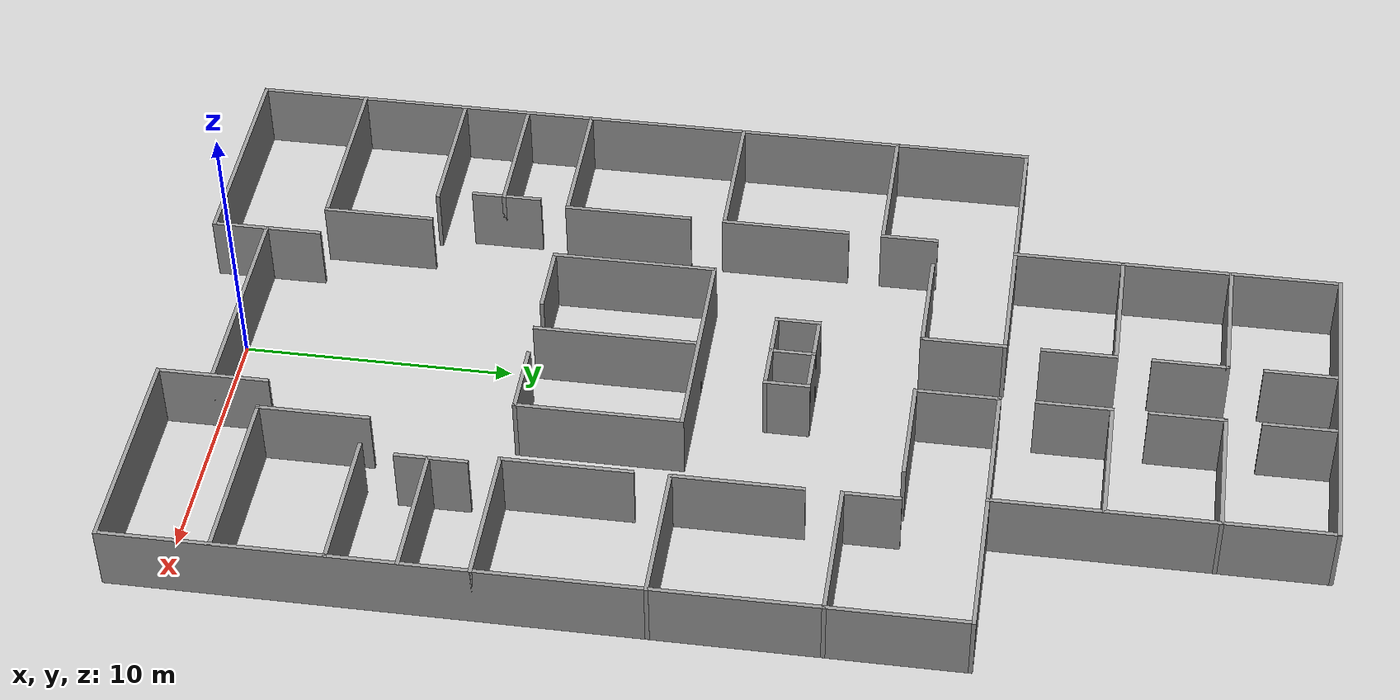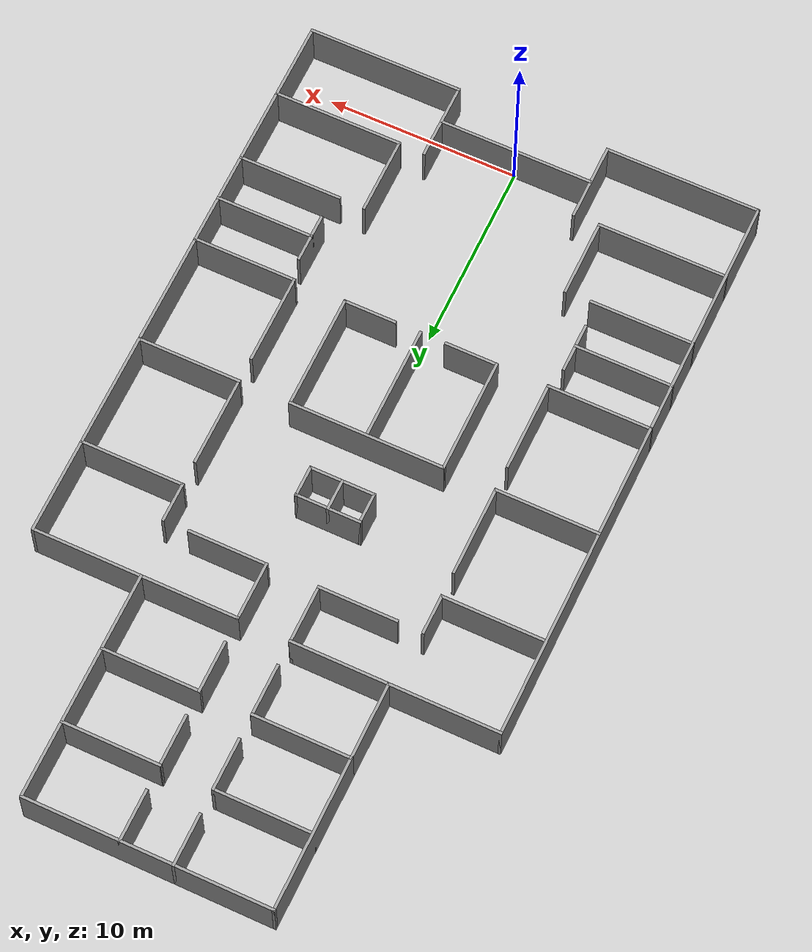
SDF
<?xml version='1.0'?>
<sdf version='1.6'>
  <model name='hospital_02'>
    <pose frame=''>0 19 0 0 -0 0</pose>
    <link name='Wall_107'>
      <collision name='Wall_107_Collision'>
        <geometry>
          <box>
            <size>6.15 0.15 2.5</size>
          </box>
        </geometry>
        <pose frame=''>0 0 1.25 0 -0 0</pose>
      </collision>
      <visual name='Wall_107_Visual'>
        <pose frame=''>0 0 1.25 0 -0 0</pose>
        <geometry>
          <box>
            <size>6.15 0.15 2.5</size>
          </box>
        </geometry>
        <material>
          <script>
            <uri>file://media/materials/scripts/gazebo.material</uri>
            <name>Gazebo/Grey</name>
          </script>
          <ambient>1 1 1 1</ambient>
        </material>
        <meta>
          <layer>0</layer>
        </meta>
      </visual>
      <pose frame=''>-4 -5 0 0 -0 -1.5708</pose>
    </link>
    <link name='Wall_109'>
      <collision name='Wall_109_Collision'>
        <geometry>
          <box>
            <size>2.8 0.15 2.5</size>
          </box>
        </geometry>
        <pose frame=''>0 0 1.25 0 -0 0</pose>
      </collision>
      <visual name='Wall_109_Visual'>
        <pose frame=''>0 0 1.25 0 -0 0</pose>
        <geometry>
          <box>
            <size>2.8 0.15 2.5</size>
          </box>
        </geometry>
        <material>
          <script>
            <uri>file://media/materials/scripts/gazebo.material</uri>
            <name>Gazebo/Grey</name>
          </script>
          <ambient>1 1 1 1</ambient>
        </material>
        <meta>
          <layer>0</layer>
        </meta>
      </visual>
      <pose frame=''>-2.675 -8 0 0 -0 0</pose>
    </link>
    <link name='Wall_111'>
      <collision name='Wall_111_Collision'>
        <geometry>
          <box>
            <size>6.15 0.15 2.5</size>
          </box>
        </geometry>
        <pose frame=''>0 0 1.25 0 -0 0</pose>
      </collision>
      <visual name='Wall_111_Visual'>
        <pose frame=''>0 0 1.25 0 -0 0</pose>
        <geometry>
          <box>
            <size>6.15 0.15 2.5</size>
          </box>
        </geometry>
        <material>
          <script>
            <uri>file://media/materials/scripts/gazebo.material</uri>
            <name>Gazebo/Grey</name>
          </script>
          <ambient>1 1 1 1</ambient>
        </material>
        <meta>
          <layer>0</layer>
        </meta>
      </visual>
      <pose frame=''>4 -5 0 0 -0 -1.5708</pose>
    </link>
    <link name='Wall_113'>
      <collision name='Wall_113_Collision'>
        <geometry>
          <box>
            <size>2.8 0.15 2.5</size>
          </box>
        </geometry>
        <pose frame=''>0 0 1.25 0 -0 0</pose>
      </collision>
      <visual name='Wall_113_Visual'>
        <pose frame=''>0 0 1.25 0 -0 0</pose>
        <geometry>
          <box>
            <size>2.8 0.15 2.5</size>
          </box>
        </geometry>
        <material>
          <script>
            <uri>file://media/materials/scripts/gazebo.material</uri>
            <name>Gazebo/Grey</name>
          </script>
          <ambient>1 1 1 1</ambient>
        </material>
        <meta>
          <layer>0</layer>
        </meta>
      </visual>
      <pose frame=''>2.675 -8 0 0 -0 3.14159</pose>
    </link>
    <link name='Wall_117'>
      <collision name='Wall_117_Collision'>
        <geometry>
          <box>
            <size>3.45 0.15 2.5</size>
          </box>
        </geometry>
        <pose frame=''>0 0 1.25 0 -0 0</pose>
      </collision>
      <visual name='Wall_117_Visual'>
        <pose frame=''>0 0 1.25 0 -0 0</pose>
        <geometry>
          <box>
            <size>3.45 0.15 2.5</size>
          </box>
        </geometry>
        <material>
          <script>
            <uri>file://media/materials/scripts/gazebo.material</uri>
            <name>Gazebo/Grey</name>
          </script>
          <ambient>1 1 1 1</ambient>
        </material>
        <meta>
          <layer>0</layer>
        </meta>
      </visual>
      <pose frame=''>0 2.2 0 0 -0 0</pose>
    </link>
    <link name='Wall_119'>
      <collision name='Wall_119_Collision'>
        <geometry>
          <box>
            <size>3.45 0.15 2.5</size>
          </box>
        </geometry>
        <pose frame=''>0 0 1.25 0 -0 0</pose>
      </collision>
      <visual name='Wall_119_Visual'>
        <pose frame=''>0 0 1.25 0 -0 0</pose>
        <geometry>
          <box>
            <size>3.45 0.15 2.5</size>
          </box>
        </geometry>
        <material>
          <script>
            <uri>file://media/materials/scripts/gazebo.material</uri>
            <name>Gazebo/Grey</name>
          </script>
          <ambient>1 1 1 1</ambient>
        </material>
        <meta>
          <layer>0</layer>
        </meta>
      </visual>
      <pose frame=''>0 0.65 0 0 -0 0</pose>
    </link>
    <link name='Wall_121'>
      <collision name='Wall_121_Collision'>
        <geometry>
          <box>
            <size>1.7 0.15 2.5</size>
          </box>
        </geometry>
        <pose frame=''>0 0 1.25 0 -0 0</pose>
      </collision>
      <visual name='Wall_121_Visual'>
        <pose frame=''>0 0 1.25 0 -0 0</pose>
        <geometry>
          <box>
            <size>1.7 0.15 2.5</size>
          </box>
        </geometry>
        <material>
          <script>
            <uri>file://media/materials/scripts/gazebo.material</uri>
            <name>Gazebo/Grey</name>
          </script>
          <ambient>1 1 1 1</ambient>
        </material>
        <meta>
          <layer>0</layer>
        </meta>
      </visual>
      <pose frame=''>0 1.425 0 0 -0 -1.5708</pose>
    </link>
    <link name='Wall_123'>
      <collision name='Wall_123_Collision'>
        <geometry>
          <box>
            <size>1.7 0.15 2.5</size>
          </box>
        </geometry>
        <pose frame=''>0 0 1.25 0 -0 0</pose>
      </collision>
      <visual name='Wall_123_Visual'>
        <pose frame=''>0 0 1.25 0 -0 0</pose>
        <geometry>
          <box>
            <size>1.7 0.15 2.5</size>
          </box>
        </geometry>
        <material>
          <script>
            <uri>file://media/materials/scripts/gazebo.material</uri>
            <name>Gazebo/Grey</name>
          </script>
          <ambient>1 1 1 1</ambient>
        </material>
        <meta>
          <layer>0</layer>
        </meta>
      </visual>
      <pose frame=''>-1.65 1.425 0 0 -0 -1.5708</pose>
    </link>
    <link name='Wall_125'>
      <collision name='Wall_125_Collision'>
        <geometry>
          <box>
            <size>1.7 0.15 2.5</size>
          </box>
        </geometry>
        <pose frame=''>0 0 1.25 0 -0 0</pose>
      </collision>
      <visual name='Wall_125_Visual'>
        <pose frame=''>0 0 1.25 0 -0 0</pose>
        <geometry>
          <box>
            <size>1.7 0.15 2.5</size>
          </box>
        </geometry>
        <material>
          <script>
            <uri>file://media/materials/scripts/gazebo.material</uri>
            <name>Gazebo/Grey</name>
          </script>
          <ambient>1 1 1 1</ambient>
        </material>
        <meta>
          <layer>0</layer>
        </meta>
      </visual>
      <pose frame=''>1.65 1.425 0 0 -0 -1.5708</pose>
    </link>
    <link name='Wall_131'>
      <collision name='Wall_131_Collision'>
        <geometry>
          <box>
            <size>10.8 0.15 2.5</size>
          </box>
        </geometry>
        <pose frame=''>0 0 1.25 0 -0 0</pose>
      </collision>
      <visual name='Wall_131_Visual'>
        <pose frame=''>0 0 1.25 0 -0 0</pose>
        <geometry>
          <box>
            <size>10.8 0.15 2.5</size>
          </box>
        </geometry>
        <material>
          <script>
            <uri>file://media/materials/scripts/gazebo.material</uri>
            <name>Gazebo/Grey</name>
          </script>
          <ambient>1 1 1 1</ambient>
        </material>
        <meta>
          <layer>0</layer>
        </meta>
      </visual>
      <pose frame=''>-6.675 9 0 0 -0 0</pose>
    </link>
    <link name='Wall_133'>
      <collision name='Wall_133_Collision'>
        <geometry>
          <box>
            <size>10.8 0.15 2.5</size>
          </box>
        </geometry>
        <pose frame=''>0 0 1.25 0 -0 0</pose>
      </collision>
      <visual name='Wall_133_Visual'>
        <pose frame=''>0 0 1.25 0 -0 0</pose>
        <geometry>
          <box>
            <size>10.8 0.15 2.5</size>
          </box>
        </geometry>
        <material>
          <script>
            <uri>file://media/materials/scripts/gazebo.material</uri>
            <name>Gazebo/Grey</name>
          </script>
          <ambient>1 1 1 1</ambient>
        </material>
        <meta>
          <layer>0</layer>
        </meta>
      </visual>
      <pose frame=''>6.675 9 0 0 -0 3.14159</pose>
    </link>
    <link name='Wall_135'>
      <collision name='Wall_135_Collision'>
        <geometry>
          <box>
            <size>5.15 0.15 2.5</size>
          </box>
        </geometry>
        <pose frame=''>0 0 1.25 0 -0 0</pose>
      </collision>
      <visual name='Wall_135_Visual'>
        <pose frame=''>0 0 1.25 0 -0 0</pose>
        <geometry>
          <box>
            <size>5.15 0.15 2.5</size>
          </box>
        </geometry>
        <material>
          <script>
            <uri>file://media/materials/scripts/gazebo.material</uri>
            <name>Gazebo/Grey</name>
          </script>
          <ambient>1 1 1 1</ambient>
        </material>
        <meta>
          <layer>0</layer>
        </meta>
      </visual>
      <pose frame=''>-3.85 13 0 0 -0 0</pose>
    </link>
    <link name='Wall_137'>
      <collision name='Wall_137_Collision'>
        <geometry>
          <box>
            <size>4.15 0.15 2.5</size>
          </box>
        </geometry>
        <pose frame=''>0 0 1.25 0 -0 0</pose>
      </collision>
      <visual name='Wall_137_Visual'>
        <pose frame=''>0 0 1.25 0 -0 0</pose>
        <geometry>
          <box>
            <size>4.15 0.15 2.5</size>
          </box>
        </geometry>
        <material>
          <script>
            <uri>file://media/materials/scripts/gazebo.material</uri>
            <name>Gazebo/Grey</name>
          </script>
          <ambient>1 1 1 1</ambient>
        </material>
        <meta>
          <layer>0</layer>
        </meta>
      </visual>
      <pose frame=''>-6.35 11 0 0 -0 -1.5708</pose>
    </link>
    <link name='Wall_139'>
      <collision name='Wall_139_Collision'>
        <geometry>
          <box>
            <size>2.8 0.15 2.5</size>
          </box>
        </geometry>
        <pose frame=''>0 0 1.25 0 -0 0</pose>
      </collision>
      <visual name='Wall_139_Visual'>
        <pose frame=''>0 0 1.25 0 -0 0</pose>
        <geometry>
          <box>
            <size>2.8 0.15 2.5</size>
          </box>
        </geometry>
        <material>
          <script>
            <uri>file://media/materials/scripts/gazebo.material</uri>
            <name>Gazebo/Grey</name>
          </script>
          <ambient>1 1 1 1</ambient>
        </material>
        <meta>
          <layer>0</layer>
        </meta>
      </visual>
      <pose frame=''>-1.35 11.675 0 0 -0 -1.5708</pose>
    </link>
    <link name='Wall_143'>
      <collision name='Wall_143_Collision'>
        <geometry>
          <box>
            <size>5.15 0.15 2.5</size>
          </box>
        </geometry>
        <pose frame=''>0 0 1.25 0 -0 0</pose>
      </collision>
      <visual name='Wall_143_Visual'>
        <pose frame=''>0 0 1.25 0 -0 0</pose>
        <geometry>
          <box>
            <size>5.15 0.15 2.5</size>
          </box>
        </geometry>
        <material>
          <script>
            <uri>file://media/materials/scripts/gazebo.material</uri>
            <name>Gazebo/Grey</name>
          </script>
          <ambient>1 1 1 1</ambient>
        </material>
        <meta>
          <layer>0</layer>
        </meta>
      </visual>
      <pose frame=''>-3.85 17 0 0 -0 0</pose>
    </link>
    <link name='Wall_145'>
      <collision name='Wall_145_Collision'>
        <geometry>
          <box>
            <size>2.8 0.15 2.5</size>
          </box>
        </geometry>
        <pose frame=''>0 0 1.25 0 -0 0</pose>
      </collision>
      <visual name='Wall_145_Visual'>
        <pose frame=''>0 0 1.25 0 -0 0</pose>
        <geometry>
          <box>
            <size>2.8 0.15 2.5</size>
          </box>
        </geometry>
        <material>
          <script>
            <uri>file://media/materials/scripts/gazebo.material</uri>
            <name>Gazebo/Grey</name>
          </script>
          <ambient>1 1 1 1</ambient>
        </material>
        <meta>
          <layer>0</layer>
        </meta>
      </visual>
      <pose frame=''>-1.35 15.675 0 0 -0 -1.5708</pose>
    </link>
    <link name='Wall_149'>
      <collision name='Wall_149_Collision'>
        <geometry>
          <box>
            <size>12.85 0.15 2.5</size>
          </box>
        </geometry>
        <pose frame=''>0 0 1.25 0 -0 0</pose>
      </collision>
      <visual name='Wall_149_Visual'>
        <pose frame=''>0 0 1.25 0 -0 0</pose>
        <geometry>
          <box>
            <size>12.85 0.15 2.5</size>
          </box>
        </geometry>
        <material>
          <script>
            <uri>file://media/materials/scripts/gazebo.material</uri>
            <name>Gazebo/Grey</name>
          </script>
          <ambient>1 1 1 1</ambient>
        </material>
        <meta>
          <layer>0</layer>
        </meta>
      </visual>
      <pose frame=''>0 21 0 0 -0 0</pose>
    </link>
    <link name='Wall_151'>
      <collision name='Wall_151_Collision'>
        <geometry>
          <box>
            <size>2.8 0.15 2.5</size>
          </box>
        </geometry>
        <pose frame=''>0 0 1.25 0 -0 0</pose>
      </collision>
      <visual name='Wall_151_Visual'>
        <pose frame=''>0 0 1.25 0 -0 0</pose>
        <geometry>
          <box>
            <size>2.8 0.15 2.5</size>
          </box>
        </geometry>
        <material>
          <script>
            <uri>file://media/materials/scripts/gazebo.material</uri>
            <name>Gazebo/Grey</name>
          </script>
          <ambient>1 1 1 1</ambient>
        </material>
        <meta>
          <layer>0</layer>
        </meta>
      </visual>
      <pose frame=''>-1.35 19.675 0 0 -0 -1.5708</pose>
    </link>
    <link name='Wall_153'>
      <collision name='Wall_153_Collision'>
        <geometry>
          <box>
            <size>12.15 0.15 2.5</size>
          </box>
        </geometry>
        <pose frame=''>0 0 1.25 0 -0 0</pose>
      </collision>
      <visual name='Wall_153_Visual'>
        <pose frame=''>0 0 1.25 0 -0 0</pose>
        <geometry>
          <box>
            <size>12.15 0.15 2.5</size>
          </box>
        </geometry>
        <material>
          <script>
            <uri>file://media/materials/scripts/gazebo.material</uri>
            <name>Gazebo/Grey</name>
          </script>
          <ambient>1 1 1 1</ambient>
        </material>
        <meta>
          <layer>0</layer>
        </meta>
      </visual>
      <pose frame=''>6.35 15 0 0 -0 1.5708</pose>
    </link>
    <link name='Wall_155'>
      <collision name='Wall_155_Collision'>
        <geometry>
          <box>
            <size>5.15 0.15 2.5</size>
          </box>
        </geometry>
        <pose frame=''>0 0 1.25 0 -0 0</pose>
      </collision>
      <visual name='Wall_155_Visual'>
        <pose frame=''>0 0 1.25 0 -0 0</pose>
        <geometry>
          <box>
            <size>5.15 0.15 2.5</size>
          </box>
        </geometry>
        <material>
          <script>
            <uri>file://media/materials/scripts/gazebo.material</uri>
            <name>Gazebo/Grey</name>
          </script>
          <ambient>1 1 1 1</ambient>
        </material>
        <meta>
          <layer>0</layer>
        </meta>
      </visual>
      <pose frame=''>3.85 13 0 0 -0 0</pose>
    </link>
    <link name='Wall_157'>
      <collision name='Wall_157_Collision'>
        <geometry>
          <box>
            <size>5.15 0.15 2.5</size>
          </box>
        </geometry>
        <pose frame=''>0 0 1.25 0 -0 0</pose>
      </collision>
      <visual name='Wall_157_Visual'>
        <pose frame=''>0 0 1.25 0 -0 0</pose>
        <geometry>
          <box>
            <size>5.15 0.15 2.5</size>
          </box>
        </geometry>
        <material>
          <script>
            <uri>file://media/materials/scripts/gazebo.material</uri>
            <name>Gazebo/Grey</name>
          </script>
          <ambient>1 1 1 1</ambient>
        </material>
        <meta>
          <layer>0</layer>
        </meta>
      </visual>
      <pose frame=''>3.85 17 0 0 -0 0</pose>
    </link>
    <link name='Wall_159'>
      <collision name='Wall_159_Collision'>
        <geometry>
          <box>
            <size>2.8 0.15 2.5</size>
          </box>
        </geometry>
        <pose frame=''>0 0 1.25 0 -0 0</pose>
      </collision>
      <visual name='Wall_159_Visual'>
        <pose frame=''>0 0 1.25 0 -0 0</pose>
        <geometry>
          <box>
            <size>2.8 0.15 2.5</size>
          </box>
        </geometry>
        <material>
          <script>
            <uri>file://media/materials/scripts/gazebo.material</uri>
            <name>Gazebo/Grey</name>
          </script>
          <ambient>1 1 1 1</ambient>
        </material>
        <meta>
          <layer>0</layer>
        </meta>
      </visual>
      <pose frame=''>1.35 11.675 0 0 -0 -1.5708</pose>
    </link>
    <link name='Wall_161'>
      <collision name='Wall_161_Collision'>
        <geometry>
          <box>
            <size>2.8 0.15 2.5</size>
          </box>
        </geometry>
        <pose frame=''>0 0 1.25 0 -0 0</pose>
      </collision>
      <visual name='Wall_161_Visual'>
        <pose frame=''>0 0 1.25 0 -0 0</pose>
        <geometry>
          <box>
            <size>2.8 0.15 2.5</size>
          </box>
        </geometry>
        <material>
          <script>
            <uri>file://media/materials/scripts/gazebo.material</uri>
            <name>Gazebo/Grey</name>
          </script>
          <ambient>1 1 1 1</ambient>
        </material>
        <meta>
          <layer>0</layer>
        </meta>
      </visual>
      <pose frame=''>1.35 15.675 0 0 -0 -1.5708</pose>
    </link>
    <link name='Wall_163'>
      <collision name='Wall_163_Collision'>
        <geometry>
          <box>
            <size>2.8 0.15 2.5</size>
          </box>
        </geometry>
        <pose frame=''>0 0 1.25 0 -0 0</pose>
      </collision>
      <visual name='Wall_163_Visual'>
        <pose frame=''>0 0 1.25 0 -0 0</pose>
        <geometry>
          <box>
            <size>2.8 0.15 2.5</size>
          </box>
        </geometry>
        <material>
          <script>
            <uri>file://media/materials/scripts/gazebo.material</uri>
            <name>Gazebo/Grey</name>
          </script>
          <ambient>1 1 1 1</ambient>
        </material>
        <meta>
          <layer>0</layer>
        </meta>
      </visual>
      <pose frame=''>1.35 19.675 0 0 -0 -1.5708</pose>
    </link>
    <link name='Wall_165'>
      <collision name='Wall_165_Collision'>
        <geometry>
          <box>
            <size>8.15 0.15 2.5</size>
          </box>
        </geometry>
        <pose frame=''>0 0 1.25 0 -0 0</pose>
      </collision>
      <visual name='Wall_165_Visual'>
        <pose frame=''>0 0 1.25 0 -0 0</pose>
        <geometry>
          <box>
            <size>8.15 0.15 2.5</size>
          </box>
        </geometry>
        <material>
          <script>
            <uri>file://media/materials/scripts/gazebo.material</uri>
            <name>Gazebo/Grey</name>
          </script>
          <ambient>1 1 1 1</ambient>
        </material>
        <meta>
          <layer>0</layer>
        </meta>
      </visual>
      <pose frame=''>-6.35 17 0 0 -0 -1.5708</pose>
    </link>
    <link name='Wall_19'>
      <collision name='Wall_19_Collision'>
        <geometry>
          <box>
            <size>8.15 0.15 2.5</size>
          </box>
        </geometry>
        <pose frame=''>0 0 1.25 0 -0 0</pose>
      </collision>
      <visual name='Wall_19_Visual'>
        <pose frame=''>0 0 1.25 0 -0 0</pose>
        <geometry>
          <box>
            <size>8.15 0.15 2.5</size>
          </box>
        </geometry>
        <material>
          <script>
            <uri>file://media/materials/scripts/gazebo.material</uri>
            <name>Gazebo/Grey</name>
          </script>
          <ambient>1 1 1 1</ambient>
        </material>
        <meta>
          <layer>0</layer>
        </meta>
      </visual>
      <pose frame=''>0 -19 0 0 -0 0</pose>
    </link>
    <link name='Wall_21'>
      <collision name='Wall_21_Collision'>
        <geometry>
          <box>
            <size>4.15 0.15 2.5</size>
          </box>
        </geometry>
        <pose frame=''>0 0 1.25 0 -0 0</pose>
      </collision>
      <visual name='Wall_21_Visual'>
        <pose frame=''>0 0 1.25 0 -0 0</pose>
        <geometry>
          <box>
            <size>4.15 0.15 2.5</size>
          </box>
        </geometry>
        <material>
          <script>
            <uri>file://media/materials/scripts/gazebo.material</uri>
            <name>Gazebo/Grey</name>
          </script>
          <ambient>1 1 1 1</ambient>
        </material>
        <meta>
          <layer>0</layer>
        </meta>
      </visual>
      <pose frame=''>-4 -19 0 0 -0 1.5708</pose>
    </link>
    <link name='Wall_23'>
      <collision name='Wall_23_Collision'>
        <geometry>
          <box>
            <size>8.15 0.15 2.5</size>
          </box>
        </geometry>
        <pose frame=''>0 0 1.25 0 -0 0</pose>
      </collision>
      <visual name='Wall_23_Visual'>
        <pose frame=''>0 0 1.25 0 -0 0</pose>
        <geometry>
          <box>
            <size>8.15 0.15 2.5</size>
          </box>
        </geometry>
        <material>
          <script>
            <uri>file://media/materials/scripts/gazebo.material</uri>
            <name>Gazebo/Grey</name>
          </script>
          <ambient>1 1 1 1</ambient>
        </material>
        <meta>
          <layer>0</layer>
        </meta>
      </visual>
      <pose frame=''>-8 -21 0 0 -0 3.14159</pose>
    </link>
    <link name='Wall_26'>
      <collision name='Wall_26_Collision'>
        <geometry>
          <box>
            <size>6.8 0.15 2.5</size>
          </box>
        </geometry>
        <pose frame=''>0 0 1.25 0 -0 0</pose>
      </collision>
      <visual name='Wall_26_Visual'>
        <pose frame=''>0 0 1.25 0 -0 0</pose>
        <geometry>
          <box>
            <size>6.8 0.15 2.5</size>
          </box>
        </geometry>
        <material>
          <script>
            <uri>file://media/materials/scripts/gazebo.material</uri>
            <name>Gazebo/Grey</name>
          </script>
          <ambient>1 1 1 1</ambient>
        </material>
        <meta>
          <layer>0</layer>
        </meta>
      </visual>
      <pose frame=''>-8.675 -17 0 0 -0 0</pose>
    </link>
    <link name='Wall_30'>
      <collision name='Wall_30_Collision'>
        <geometry>
          <box>
            <size>4.15 0.15 2.5</size>
          </box>
        </geometry>
        <pose frame=''>0 0 1.25 0 -0 0</pose>
      </collision>
      <visual name='Wall_30_Visual'>
        <pose frame=''>0 0 1.25 0 -0 0</pose>
        <geometry>
          <box>
            <size>4.15 0.15 2.5</size>
          </box>
        </geometry>
        <material>
          <script>
            <uri>file://media/materials/scripts/gazebo.material</uri>
            <name>Gazebo/Grey</name>
          </script>
          <ambient>1 1 1 1</ambient>
        </material>
        <meta>
          <layer>0</layer>
        </meta>
      </visual>
      <pose frame=''>-5.35 -15 0 0 -0 1.5708</pose>
    </link>
    <link name='Wall_32'>
      <collision name='Wall_32_Collision'>
        <geometry>
          <box>
            <size>5.45 0.15 2.5</size>
          </box>
        </geometry>
        <pose frame=''>0 0 1.25 0 -0 0</pose>
      </collision>
      <visual name='Wall_32_Visual'>
        <pose frame=''>0 0 1.25 0 -0 0</pose>
        <geometry>
          <box>
            <size>5.45 0.15 2.5</size>
          </box>
        </geometry>
        <material>
          <script>
            <uri>file://media/materials/scripts/gazebo.material</uri>
            <name>Gazebo/Grey</name>
          </script>
          <ambient>1 1 1 1</ambient>
        </material>
        <meta>
          <layer>0</layer>
        </meta>
      </visual>
      <pose frame=''>-9.35 -13 0 0 -0 0</pose>
    </link>
    <link name='Wall_37'>
      <collision name='Wall_37_Collision'>
        <geometry>
          <box>
            <size>5.15 0.15 2.5</size>
          </box>
        </geometry>
        <pose frame=''>0 0 1.25 0 -0 0</pose>
      </collision>
      <visual name='Wall_37_Visual'>
        <pose frame=''>0 0 1.25 0 -0 0</pose>
        <geometry>
          <box>
            <size>5.15 0.15 2.5</size>
          </box>
        </geometry>
        <material>
          <script>
            <uri>file://media/materials/scripts/gazebo.material</uri>
            <name>Gazebo/Grey</name>
          </script>
          <ambient>1 1 1 1</ambient>
        </material>
        <meta>
          <layer>0</layer>
        </meta>
      </visual>
      <pose frame=''>-9.5 -10.5 0 0 -0 0</pose>
    </link>
    <link name='Wall_39'>
      <collision name='Wall_39_Collision'>
        <geometry>
          <box>
            <size>2.65 0.15 2.5</size>
          </box>
        </geometry>
        <pose frame=''>0 0 1.25 0 -0 0</pose>
      </collision>
      <visual name='Wall_39_Visual'>
        <pose frame=''>0 0 1.25 0 -0 0</pose>
        <geometry>
          <box>
            <size>2.65 0.15 2.5</size>
          </box>
        </geometry>
        <material>
          <script>
            <uri>file://media/materials/scripts/gazebo.material</uri>
            <name>Gazebo/Grey</name>
          </script>
          <ambient>1 1 1 1</ambient>
        </material>
        <meta>
          <layer>0</layer>
        </meta>
      </visual>
      <pose frame=''>-7 -10.4 0 0 -0 1.5708</pose>
    </link>
    <link name='Wall_43'>
      <collision name='Wall_43_Collision'>
        <geometry>
          <box>
            <size>5.45 0.15 2.5</size>
          </box>
        </geometry>
        <pose frame=''>0 0 1.25 0 -0 0</pose>
      </collision>
      <visual name='Wall_43_Visual'>
        <pose frame=''>0 0 1.25 0 -0 0</pose>
        <geometry>
          <box>
            <size>5.45 0.15 2.5</size>
          </box>
        </geometry>
        <material>
          <script>
            <uri>file://media/materials/scripts/gazebo.material</uri>
            <name>Gazebo/Grey</name>
          </script>
          <ambient>1 1 1 1</ambient>
        </material>
        <meta>
          <layer>0</layer>
        </meta>
      </visual>
      <pose frame=''>-9.35 -8 0 0 -0 0</pose>
    </link>
    <link name='Wall_45'>
      <collision name='Wall_45_Collision'>
        <geometry>
          <box>
            <size>4.8 0.15 2.5</size>
          </box>
        </geometry>
        <pose frame=''>0 0 1.25 0 -0 0</pose>
      </collision>
      <visual name='Wall_45_Visual'>
        <pose frame=''>0 0 1.25 0 -0 0</pose>
        <geometry>
          <box>
            <size>4.8 0.15 2.5</size>
          </box>
        </geometry>
        <material>
          <script>
            <uri>file://media/materials/scripts/gazebo.material</uri>
            <name>Gazebo/Grey</name>
          </script>
          <ambient>1 1 1 1</ambient>
        </material>
        <meta>
          <layer>0</layer>
        </meta>
      </visual>
      <pose frame=''>-6.7 -5.675 0 0 -0 1.5708</pose>
    </link>
    <link name='Wall_47'>
      <collision name='Wall_47_Collision'>
        <geometry>
          <box>
            <size>5.45 0.15 2.5</size>
          </box>
        </geometry>
        <pose frame=''>0 0 1.25 0 -0 0</pose>
      </collision>
      <visual name='Wall_47_Visual'>
        <pose frame=''>0 0 1.25 0 -0 0</pose>
        <geometry>
          <box>
            <size>5.45 0.15 2.5</size>
          </box>
        </geometry>
        <material>
          <script>
            <uri>file://media/materials/scripts/gazebo.material</uri>
            <name>Gazebo/Grey</name>
          </script>
          <ambient>1 1 1 1</ambient>
        </material>
        <meta>
          <layer>0</layer>
        </meta>
      </visual>
      <pose frame=''>-9.35 -2 0 0 -0 0</pose>
    </link>
    <link name='Wall_49'>
      <collision name='Wall_49_Collision'>
        <geometry>
          <box>
            <size>4.8 0.15 2.5</size>
          </box>
        </geometry>
        <pose frame=''>0 0 1.25 0 -0 0</pose>
      </collision>
      <visual name='Wall_49_Visual'>
        <pose frame=''>0 0 1.25 0 -0 0</pose>
        <geometry>
          <box>
            <size>4.8 0.15 2.5</size>
          </box>
        </geometry>
        <material>
          <script>
            <uri>file://media/materials/scripts/gazebo.material</uri>
            <name>Gazebo/Grey</name>
          </script>
          <ambient>1 1 1 1</ambient>
        </material>
        <meta>
          <layer>0</layer>
        </meta>
      </visual>
      <pose frame=''>-6.7 0.325001 0 0 -0 1.5708</pose>
    </link>
    <link name='Wall_51'>
      <collision name='Wall_51_Collision'>
        <geometry>
          <box>
            <size>5.45 0.15 2.5</size>
          </box>
        </geometry>
        <pose frame=''>0 0 1.25 0 -0 0</pose>
      </collision>
      <visual name='Wall_51_Visual'>
        <pose frame=''>0 0 1.25 0 -0 0</pose>
        <geometry>
          <box>
            <size>5.45 0.15 2.5</size>
          </box>
        </geometry>
        <material>
          <script>
            <uri>file://media/materials/scripts/gazebo.material</uri>
            <name>Gazebo/Grey</name>
          </script>
          <ambient>1 1 1 1</ambient>
        </material>
        <meta>
          <layer>0</layer>
        </meta>
      </visual>
      <pose frame=''>-9.35 4 0 0 -0 0</pose>
    </link>
    <link name='Wall_53'>
      <collision name='Wall_53_Collision'>
        <geometry>
          <box>
            <size>2.15 0.15 2.5</size>
          </box>
        </geometry>
        <pose frame=''>0 0 1.25 0 -0 0</pose>
      </collision>
      <visual name='Wall_53_Visual'>
        <pose frame=''>0 0 1.25 0 -0 0</pose>
        <geometry>
          <box>
            <size>2.15 0.15 2.5</size>
          </box>
        </geometry>
        <material>
          <script>
            <uri>file://media/materials/scripts/gazebo.material</uri>
            <name>Gazebo/Grey</name>
          </script>
          <ambient>1 1 1 1</ambient>
        </material>
        <meta>
          <layer>0</layer>
        </meta>
      </visual>
      <pose frame=''>-6.7 5 0 0 -0 1.5708</pose>
    </link>
    <link name='Wall_55'>
      <collision name='Wall_55_Collision'>
        <geometry>
          <box>
            <size>4.15 0.15 2.5</size>
          </box>
        </geometry>
        <pose frame=''>0 0 1.25 0 -0 0</pose>
      </collision>
      <visual name='Wall_55_Visual'>
        <pose frame=''>0 0 1.25 0 -0 0</pose>
        <geometry>
          <box>
            <size>4.15 0.15 2.5</size>
          </box>
        </geometry>
        <material>
          <script>
            <uri>file://media/materials/scripts/gazebo.material</uri>
            <name>Gazebo/Grey</name>
          </script>
          <ambient>1 1 1 1</ambient>
        </material>
        <meta>
          <layer>0</layer>
        </meta>
      </visual>
      <pose frame=''>-3.35 6 0 0 -0 0</pose>
    </link>
    <link name='Wall_57'>
      <collision name='Wall_57_Collision'>
        <geometry>
          <box>
            <size>3.15 0.15 2.5</size>
          </box>
        </geometry>
        <pose frame=''>0 0 1.25 0 -0 0</pose>
      </collision>
      <visual name='Wall_57_Visual'>
        <pose frame=''>0 0 1.25 0 -0 0</pose>
        <geometry>
          <box>
            <size>3.15 0.15 2.5</size>
          </box>
        </geometry>
        <material>
          <script>
            <uri>file://media/materials/scripts/gazebo.material</uri>
            <name>Gazebo/Grey</name>
          </script>
          <ambient>1 1 1 1</ambient>
        </material>
        <meta>
          <layer>0</layer>
        </meta>
      </visual>
      <pose frame=''>-1.35 7.5 0 0 -0 1.5708</pose>
    </link>
    <link name='Wall_61'>
      <collision name='Wall_61_Collision'>
        <geometry>
          <box>
            <size>30.15 0.15 2.5</size>
          </box>
        </geometry>
        <pose frame=''>0 0 1.25 0 -0 0</pose>
      </collision>
      <visual name='Wall_61_Visual'>
        <pose frame=''>0 0 1.25 0 -0 0</pose>
        <geometry>
          <box>
            <size>30.15 0.15 2.5</size>
          </box>
        </geometry>
        <material>
          <script>
            <uri>file://media/materials/scripts/gazebo.material</uri>
            <name>Gazebo/Grey</name>
          </script>
          <ambient>1 1 1 1</ambient>
        </material>
        <meta>
          <layer>0</layer>
        </meta>
      </visual>
      <pose frame=''>-12 -6 0 0 -0 1.5708</pose>
    </link>
    <link name='Wall_63'>
      <collision name='Wall_63_Collision'>
        <geometry>
          <box>
            <size>4.15 0.15 2.5</size>
          </box>
        </geometry>
        <pose frame=''>0 0 1.25 0 -0 0</pose>
      </collision>
      <visual name='Wall_63_Visual'>
        <pose frame=''>0 0 1.25 0 -0 0</pose>
        <geometry>
          <box>
            <size>4.15 0.15 2.5</size>
          </box>
        </geometry>
        <material>
          <script>
            <uri>file://media/materials/scripts/gazebo.material</uri>
            <name>Gazebo/Grey</name>
          </script>
          <ambient>1 1 1 1</ambient>
        </material>
        <meta>
          <layer>0</layer>
        </meta>
      </visual>
      <pose frame=''>4 -19 0 0 -0 -1.5708</pose>
    </link>
    <link name='Wall_65'>
      <collision name='Wall_65_Collision'>
        <geometry>
          <box>
            <size>8.15 0.15 2.5</size>
          </box>
        </geometry>
        <pose frame=''>0 0 1.25 0 -0 0</pose>
      </collision>
      <visual name='Wall_65_Visual'>
        <pose frame=''>0 0 1.25 0 -0 0</pose>
        <geometry>
          <box>
            <size>8.15 0.15 2.5</size>
          </box>
        </geometry>
        <material>
          <script>
            <uri>file://media/materials/scripts/gazebo.material</uri>
            <name>Gazebo/Grey</name>
          </script>
          <ambient>1 1 1 1</ambient>
        </material>
        <meta>
          <layer>0</layer>
        </meta>
      </visual>
      <pose frame=''>8 -21 0 0 -0 0</pose>
    </link>
    <link name='Wall_67'>
      <collision name='Wall_67_Collision'>
        <geometry>
          <box>
            <size>30.15 0.15 2.5</size>
          </box>
        </geometry>
        <pose frame=''>0 0 1.25 0 -0 0</pose>
      </collision>
      <visual name='Wall_67_Visual'>
        <pose frame=''>0 0 1.25 0 -0 0</pose>
        <geometry>
          <box>
            <size>30.15 0.15 2.5</size>
          </box>
        </geometry>
        <material>
          <script>
            <uri>file://media/materials/scripts/gazebo.material</uri>
            <name>Gazebo/Grey</name>
          </script>
          <ambient>1 1 1 1</ambient>
        </material>
        <meta>
          <layer>0</layer>
        </meta>
      </visual>
      <pose frame=''>12 -6 0 0 -0 1.5708</pose>
    </link>
    <link name='Wall_69'>
      <collision name='Wall_69_Collision'>
        <geometry>
          <box>
            <size>6.8 0.15 2.5</size>
          </box>
        </geometry>
        <pose frame=''>0 0 1.25 0 -0 0</pose>
      </collision>
      <visual name='Wall_69_Visual'>
        <pose frame=''>0 0 1.25 0 -0 0</pose>
        <geometry>
          <box>
            <size>6.8 0.15 2.5</size>
          </box>
        </geometry>
        <material>
          <script>
            <uri>file://media/materials/scripts/gazebo.material</uri>
            <name>Gazebo/Grey</name>
          </script>
          <ambient>1 1 1 1</ambient>
        </material>
        <meta>
          <layer>0</layer>
        </meta>
      </visual>
      <pose frame=''>8.675 -17 0 0 -0 0</pose>
    </link>
    <link name='Wall_71'>
      <collision name='Wall_71_Collision'>
        <geometry>
          <box>
            <size>4.15 0.15 2.5</size>
          </box>
        </geometry>
        <pose frame=''>0 0 1.25 0 -0 0</pose>
      </collision>
      <visual name='Wall_71_Visual'>
        <pose frame=''>0 0 1.25 0 -0 0</pose>
        <geometry>
          <box>
            <size>4.15 0.15 2.5</size>
          </box>
        </geometry>
        <material>
          <script>
            <uri>file://media/materials/scripts/gazebo.material</uri>
            <name>Gazebo/Grey</name>
          </script>
          <ambient>1 1 1 1</ambient>
        </material>
        <meta>
          <layer>0</layer>
        </meta>
      </visual>
      <pose frame=''>5.35 -15 0 0 -0 1.5708</pose>
    </link>
    <link name='Wall_73'>
      <collision name='Wall_73_Collision'>
        <geometry>
          <box>
            <size>5.45 0.15 2.5</size>
          </box>
        </geometry>
        <pose frame=''>0 0 1.25 0 -0 0</pose>
      </collision>
      <visual name='Wall_73_Visual'>
        <pose frame=''>0 0 1.25 0 -0 0</pose>
        <geometry>
          <box>
            <size>5.45 0.15 2.5</size>
          </box>
        </geometry>
        <material>
          <script>
            <uri>file://media/materials/scripts/gazebo.material</uri>
            <name>Gazebo/Grey</name>
          </script>
          <ambient>1 1 1 1</ambient>
        </material>
        <meta>
          <layer>0</layer>
        </meta>
      </visual>
      <pose frame=''>9.35 -13 0 0 -0 0</pose>
    </link>
    <link name='Wall_75'>
      <collision name='Wall_75_Collision'>
        <geometry>
          <box>
            <size>5.15 0.15 2.5</size>
          </box>
        </geometry>
        <pose frame=''>0 0 1.25 0 -0 0</pose>
      </collision>
      <visual name='Wall_75_Visual'>
        <pose frame=''>0 0 1.25 0 -0 0</pose>
        <geometry>
          <box>
            <size>5.15 0.15 2.5</size>
          </box>
        </geometry>
        <material>
          <script>
            <uri>file://media/materials/scripts/gazebo.material</uri>
            <name>Gazebo/Grey</name>
          </script>
          <ambient>1 1 1 1</ambient>
        </material>
        <meta>
          <layer>0</layer>
        </meta>
      </visual>
      <pose frame=''>9.5 -10.5 0 0 -0 0</pose>
    </link>
    <link name='Wall_77'>
      <collision name='Wall_77_Collision'>
        <geometry>
          <box>
            <size>2.65 0.15 2.5</size>
          </box>
        </geometry>
        <pose frame=''>0 0 1.25 0 -0 0</pose>
      </collision>
      <visual name='Wall_77_Visual'>
        <pose frame=''>0 0 1.25 0 -0 0</pose>
        <geometry>
          <box>
            <size>2.65 0.15 2.5</size>
          </box>
        </geometry>
        <material>
          <script>
            <uri>file://media/materials/scripts/gazebo.material</uri>
            <name>Gazebo/Grey</name>
          </script>
          <ambient>1 1 1 1</ambient>
        </material>
        <meta>
          <layer>0</layer>
        </meta>
      </visual>
      <pose frame=''>7 -10.4 0 0 -0 1.5708</pose>
    </link>
    <link name='Wall_79'>
      <collision name='Wall_79_Collision'>
        <geometry>
          <box>
            <size>5.45 0.15 2.5</size>
          </box>
        </geometry>
        <pose frame=''>0 0 1.25 0 -0 0</pose>
      </collision>
      <visual name='Wall_79_Visual'>
        <pose frame=''>0 0 1.25 0 -0 0</pose>
        <geometry>
          <box>
            <size>5.45 0.15 2.5</size>
          </box>
        </geometry>
        <material>
          <script>
            <uri>file://media/materials/scripts/gazebo.material</uri>
            <name>Gazebo/Grey</name>
          </script>
          <ambient>1 1 1 1</ambient>
        </material>
        <meta>
          <layer>0</layer>
        </meta>
      </visual>
      <pose frame=''>9.35 -8 0 0 -0 3.14159</pose>
    </link>
    <link name='Wall_81'>
      <collision name='Wall_81_Collision'>
        <geometry>
          <box>
            <size>4.8 0.15 2.5</size>
          </box>
        </geometry>
        <pose frame=''>0 0 1.25 0 -0 0</pose>
      </collision>
      <visual name='Wall_81_Visual'>
        <pose frame=''>0 0 1.25 0 -0 0</pose>
        <geometry>
          <box>
            <size>4.8 0.15 2.5</size>
          </box>
        </geometry>
        <material>
          <script>
            <uri>file://media/materials/scripts/gazebo.material</uri>
            <name>Gazebo/Grey</name>
          </script>
          <ambient>1 1 1 1</ambient>
        </material>
        <meta>
          <layer>0</layer>
        </meta>
      </visual>
      <pose frame=''>6.7 -5.675 0 0 -0 1.5708</pose>
    </link>
    <link name='Wall_83'>
      <collision name='Wall_83_Collision'>
        <geometry>
          <box>
            <size>4.8 0.15 2.5</size>
          </box>
        </geometry>
        <pose frame=''>0 0 1.25 0 -0 0</pose>
      </collision>
      <visual name='Wall_83_Visual'>
        <pose frame=''>0 0 1.25 0 -0 0</pose>
        <geometry>
          <box>
            <size>4.8 0.15 2.5</size>
          </box>
        </geometry>
        <material>
          <script>
            <uri>file://media/materials/scripts/gazebo.material</uri>
            <name>Gazebo/Grey</name>
          </script>
          <ambient>1 1 1 1</ambient>
        </material>
        <meta>
          <layer>0</layer>
        </meta>
      </visual>
      <pose frame=''>6.7 0.325001 0 0 -0 1.5708</pose>
    </link>
    <link name='Wall_85'>
      <collision name='Wall_85_Collision'>
        <geometry>
          <box>
            <size>5.45 0.15 2.5</size>
          </box>
        </geometry>
        <pose frame=''>0 0 1.25 0 -0 0</pose>
      </collision>
      <visual name='Wall_85_Visual'>
        <pose frame=''>0 0 1.25 0 -0 0</pose>
        <geometry>
          <box>
            <size>5.45 0.15 2.5</size>
          </box>
        </geometry>
        <material>
          <script>
            <uri>file://media/materials/scripts/gazebo.material</uri>
            <name>Gazebo/Grey</name>
          </script>
          <ambient>1 1 1 1</ambient>
        </material>
        <meta>
          <layer>0</layer>
        </meta>
      </visual>
      <pose frame=''>9.35 -2 0 0 -0 0</pose>
    </link>
    <link name='Wall_87'>
      <collision name='Wall_87_Collision'>
        <geometry>
          <box>
            <size>2.15 0.15 2.5</size>
          </box>
        </geometry>
        <pose frame=''>0 0 1.25 0 -0 0</pose>
      </collision>
      <visual name='Wall_87_Visual'>
        <pose frame=''>0 0 1.25 0 -0 0</pose>
        <geometry>
          <box>
            <size>2.15 0.15 2.5</size>
          </box>
        </geometry>
        <material>
          <script>
            <uri>file://media/materials/scripts/gazebo.material</uri>
            <name>Gazebo/Grey</name>
          </script>
          <ambient>1 1 1 1</ambient>
        </material>
        <meta>
          <layer>0</layer>
        </meta>
      </visual>
      <pose frame=''>6.7 5 0 0 -0 1.5708</pose>
    </link>
    <link name='Wall_89'>
      <collision name='Wall_89_Collision'>
        <geometry>
          <box>
            <size>5.45 0.15 2.5</size>
          </box>
        </geometry>
        <pose frame=''>0 0 1.25 0 -0 0</pose>
      </collision>
      <visual name='Wall_89_Visual'>
        <pose frame=''>0 0 1.25 0 -0 0</pose>
        <geometry>
          <box>
            <size>5.45 0.15 2.5</size>
          </box>
        </geometry>
        <material>
          <script>
            <uri>file://media/materials/scripts/gazebo.material</uri>
            <name>Gazebo/Grey</name>
          </script>
          <ambient>1 1 1 1</ambient>
        </material>
        <meta>
          <layer>0</layer>
        </meta>
      </visual>
      <pose frame=''>9.35 4 0 0 -0 0</pose>
    </link>
    <link name='Wall_91'>
      <collision name='Wall_91_Collision'>
        <geometry>
          <box>
            <size>4.15 0.15 2.5</size>
          </box>
        </geometry>
        <pose frame=''>0 0 1.25 0 -0 0</pose>
      </collision>
      <visual name='Wall_91_Visual'>
        <pose frame=''>0 0 1.25 0 -0 0</pose>
        <geometry>
          <box>
            <size>4.15 0.15 2.5</size>
          </box>
        </geometry>
        <material>
          <script>
            <uri>file://media/materials/scripts/gazebo.material</uri>
            <name>Gazebo/Grey</name>
          </script>
          <ambient>1 1 1 1</ambient>
        </material>
        <meta>
          <layer>0</layer>
        </meta>
      </visual>
      <pose frame=''>3.35 6 0 0 -0 3.14159</pose>
    </link>
    <link name='Wall_93'>
      <collision name='Wall_93_Collision'>
        <geometry>
          <box>
            <size>3.15 0.15 2.5</size>
          </box>
        </geometry>
        <pose frame=''>0 0 1.25 0 -0 0</pose>
      </collision>
      <visual name='Wall_93_Visual'>
        <pose frame=''>0 0 1.25 0 -0 0</pose>
        <geometry>
          <box>
            <size>3.15 0.15 2.5</size>
          </box>
        </geometry>
        <material>
          <script>
            <uri>file://media/materials/scripts/gazebo.material</uri>
            <name>Gazebo/Grey</name>
          </script>
          <ambient>1 1 1 1</ambient>
        </material>
        <meta>
          <layer>0</layer>
        </meta>
      </visual>
      <pose frame=''>1.35 7.5 0 0 -0 1.5708</pose>
    </link>
    <link name='Wall_95'>
      <collision name='Wall_95_Collision'>
        <geometry>
          <box>
            <size>6.15 0.15 2.5</size>
          </box>
        </geometry>
        <pose frame=''>0 0 1.25 0 -0 0</pose>
      </collision>
      <visual name='Wall_95_Visual'>
        <pose frame=''>0 0 1.25 0 -0 0</pose>
        <geometry>
          <box>
            <size>6.15 0.15 2.5</size>
          </box>
        </geometry>
        <material>
          <script>
            <uri>file://media/materials/scripts/gazebo.material</uri>
            <name>Gazebo/Grey</name>
          </script>
          <ambient>1 1 1 1</ambient>
        </material>
        <meta>
          <layer>0</layer>
        </meta>
      </visual>
      <pose frame=''>0 -5 0 0 -0 1.5708</pose>
    </link>
    <link name='Wall_97'>
      <collision name='Wall_97_Collision'>
        <geometry>
          <box>
            <size>8.15 0.15 2.5</size>
          </box>
        </geometry>
        <pose frame=''>0 0 1.25 0 -0 0</pose>
      </collision>
      <visual name='Wall_97_Visual'>
        <pose frame=''>0 0 1.25 0 -0 0</pose>
        <geometry>
          <box>
            <size>8.15 0.15 2.5</size>
          </box>
        </geometry>
        <material>
          <script>
            <uri>file://media/materials/scripts/gazebo.material</uri>
            <name>Gazebo/Grey</name>
          </script>
          <ambient>1 1 1 1</ambient>
        </material>
        <meta>
          <layer>0</layer>
        </meta>
      </visual>
      <pose frame=''>0 -2 0 0 -0 0</pose>
    </link>
    <static>1</static>
  </model>
</sdf>
